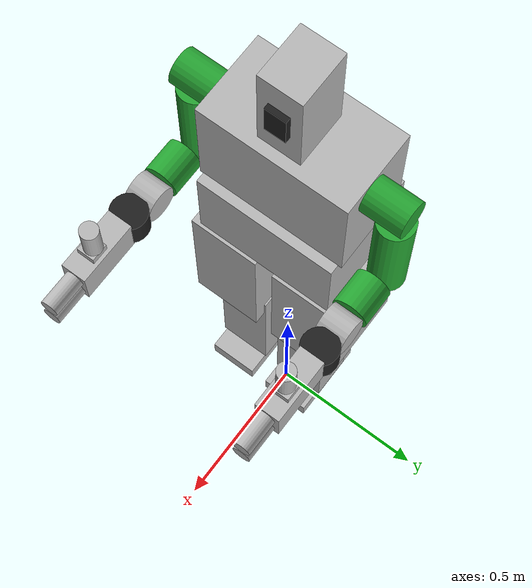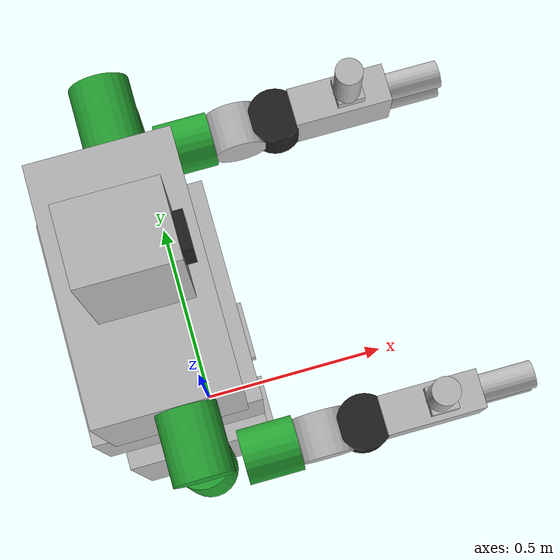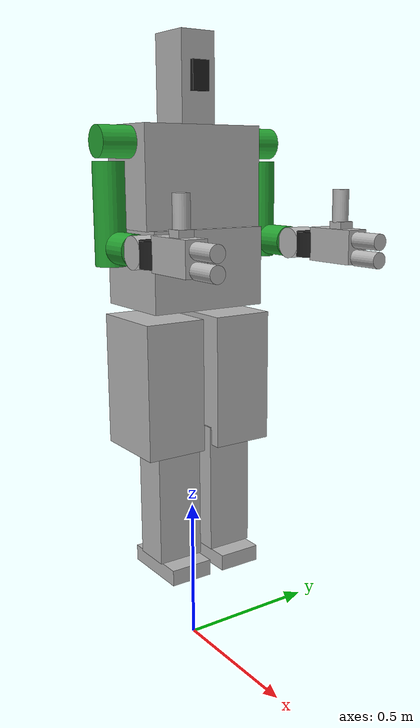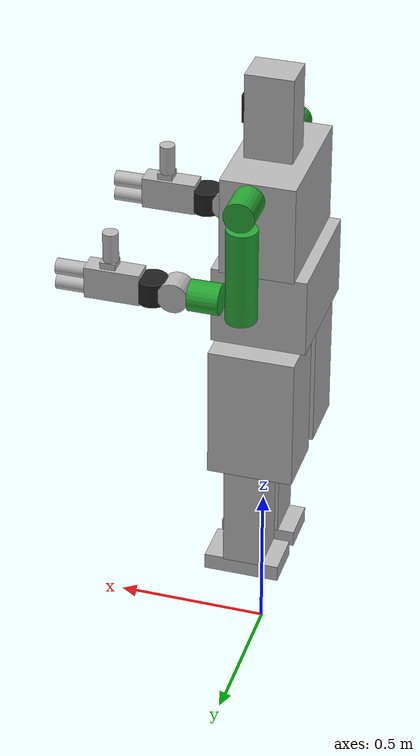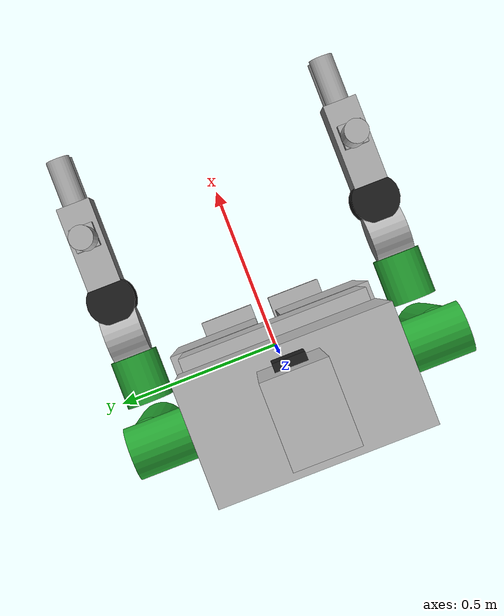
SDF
<sdf version="1.4">
 <model name="escher">
  <static>false</static>
  <pose>0 0 0.3 0 0 0</pose>
  <joint name="base" type="prismatic">
   <parent>world</parent>
   <child>torso</child>
   <axis><xyz>0 0 1</xyz><limit><upper>0</upper><lower>0</lower></limit></axis>
  </joint>
  <link name="torso">
   <pose>-0.03035 0 1.055 0 0 0</pose>
   <collision name="torso_collision"><geometry><box><size>0.307 0.41 0.26</size></box></geometry></collision>
   <visual name="torso_visual"><geometry><box><size>0.307 0.41 0.26</size></box></geometry></visual>
   <inertial>
    <pose>0.002803478 -8.1528e-05 -0.021648112 0 0 0</pose>
    <mass>12.682282372305</mass>
    <inertia>
     <ixx>0.189594996</ixx>
     <iyy>0.165226373</iyy>
     <izz>0.191129536</izz>
     <iyz>2.491e-05</iyz>
     <ixz>-0.00084363</ixz>
     <ixy>0.000243698</ixy>
    </inertia>
   </inertial>
   <sensor name="imu_sensor" type="imu">
    <pose>-0.176191689 0 -0.055105834 0 0 0</pose>
    <always_on>1</always_on>
    <visualize>1</visualize>
    <topic>imu_sensor</topic>
   </sensor>
   <sensor name="kvh_sensor" type="imu">
    <pose>-0.15365 0 -0.045645 0 0 1.5707963267949</pose>
    <always_on>1</always_on>
    <visualize>1</visualize>
    <update_rate>100.0</update_rate>
    <imu>
     <noise>
      <type>gaussian</type>
      <rate>
       <mean>0.0</mean>
       <stddev>2e-4</stddev>
       <bias_mean>0.0000075</bias_mean>
       <bias_stddev>0.0000008</bias_stddev>
      </rate>
      <accel>
       <mean>0.0</mean>
       <stddev>1.7e-2</stddev>
       <bias_mean>0.1</bias_mean>
       <bias_stddev>0.001</bias_stddev>
      </accel>
     </noise>
    </imu>
    <topic>kvh_sensor</topic>
   </sensor>
  </link>
  <link name="l_thigh">
   <pose>-0.0169442 0.132 0.67 0 0 0</pose>
   <collision name="l_thigh_collision">
    <pose>0 0 0 0 -0.15 0</pose>
    <geometry><box><size>0.28 0.21 0.45</size></box></geometry>
   </collision>
   <visual name="l_thigh_visual"><geometry><box><size>0.28 0.21 0.45</size></box></geometry></visual>
   <inertial>
    <pose>0.004050399 -0.010804671 0.022905819 0 0 0</pose>
    <mass>7.1174945701086</mass>
    <inertia>
     <ixx>0.079832533</ixx>
     <iyy>0.090497961</iyy>
     <izz>0.04397275</izz>
     <iyz>-0.003214845</iyz>
     <ixz>-0.014464827</ixz>
     <ixy>0.005608169</ixy>
    </inertia>
   </inertial>
  </link>
  <link name="r_thigh">
   <pose>-0.0169442 -0.132 0.67 0 0 0</pose>
   <collision name="r_thigh_collision">
    <pose>0 0 0 0 -0.18 0</pose>
    <geometry><box><size>0.28 0.21 0.45</size></box></geometry>
   </collision>
   <visual name="r_thigh_visual"><geometry><box><size>0.28 0.21 0.45</size></box></geometry></visual>
   <inertial>
    <pose>0.003909661 0.011175576 0.022998937 0 0 0</pose>
    <mass>7.1102215149036</mass>
    <inertia>
     <ixx>0.079523937</ixx>
     <iyy>0.090222577</iyy>
     <izz>0.044391657</izz>
     <iyz>0.003378144</iyz>
     <ixz>-0.014386485</ixz>
     <ixy>-0.005865006</ixy>
    </inertia>
   </inertial>
  </link>
  <link name="l_shin">
   <pose>0.0190724 0.1021182 0.2811108 0 0 0</pose>
   <collision name="l_shin_collision">
    <pose>0 0 0 0 0.28 0</pose>
    <geometry><box><size>0.13 0.16 0.4512008</size></box></geometry>
   </collision>
   <visual name="l_shin_visual"><geometry><box><size>0.13 0.16 0.4512008</size></box></geometry></visual>
   <inertial>
    <pose>0.020130801 -0.001731145 0.054724821 0 0 0</pose>
    <mass>4.8991768711307</mass>
    <inertia>
     <ixx>0.049926224</ixx>
     <iyy>0.051902624</iyy>
     <izz>0.017996958</izz>
     <iyz>-0.000412746</iyz>
     <ixz>0.008459786</ixz>
     <ixy>-6.1882e-05</ixy>
    </inertia>
   </inertial>
  </link>
  <link name="r_shin">
   <pose>0.0190724 -0.1021182 0.2811108 0 0 0</pose>
   <collision name="r_shin_collision">
    <pose>0 0 0 0 0.28 0</pose>
    <geometry><box><size>0.13 0.16 0.4512008</size></box></geometry>
   </collision>
   <visual name="r_shin_visual"><geometry><box><size>0.13 0.16 0.4512008</size></box></geometry></visual>
   <inertial>
    <pose>0.020130693 0.001836368 0.05472448 0 0 0</pose>
    <mass>4.899176790308</mass>
    <inertia>
     <ixx>0.049926754</ixx>
     <iyy>0.051902784</iyy>
     <izz>0.01799724</izz>
     <iyz>0.000377725</iyz>
     <ixz>0.008459765</ixz>
     <ixy>8.0717e-05</ixy>
    </inertia>
   </inertial>
  </link>
  <link name="l_foot">
   <pose>0.025 0.1 0.026724 0 0 0</pose>
   <collision name="l_foot_collision">
    <geometry><box><size>0.25 0.1485 0.05493235</size></box></geometry>
    <surface>
     <friction><ode><mu>0.9</mu><mu2>0.9</mu2><fdir1>1 0 0</fdir1></ode></friction>
     <contact><ode><max_vel>1.0</max_vel><min_depth>0.003</min_depth></ode></contact>
    </surface>
   </collision>
   <visual name="l_foot_visual"><geometry><box><size>0.25 0.1485 0.05493235</size></box></geometry></visual>
   <inertial>
    <pose>-0.028540497 0.00037102999999999 0.009582518 0 0 0</pose>
    <mass>1.8008403819182</mass>
    <inertia>
     <ixx>0.003629189</ixx>
     <iyy>0.007181627</iyy>
     <izz>0.007515445</izz>
     <iyz>2.3132e-05</iyz>
     <ixz>-0.001366256</ixz>
     <ixy>1.3079e-05</ixy>
    </inertia>
   </inertial>
   <sensor name="l_foot_contact_sensor" type="contact">
    <always_on>1</always_on>
    <contact><collision>l_foot_collision</collision></contact>
   </sensor>
  </link>
  <link name="r_foot">
   <pose>0.025 -0.1 0.0266724 0 0 0</pose>
   <collision name="r_foot_collision">
    <geometry><box><size>0.25 0.1485 0.05493235</size></box></geometry>
    <surface>
     <friction><ode><mu>0.9</mu><mu2>0.9</mu2><fdir1>1 0 0</fdir1></ode></friction>
     <contact><ode><max_vel>1.0</max_vel><min_depth>0.003</min_depth></ode></contact>
    </surface>
   </collision>
   <visual name="r_foot_visual"><geometry><box><size>0.25 0.1485 0.05493235</size></box></geometry></visual>
   <inertial>
    <pose>-0.028252817 -0.00035825099999999 0.009635153 0 0 0</pose>
    <mass>1.8047217702742</mass>
    <inertia>
     <ixx>0.003638673</ixx>
     <iyy>0.007191304</iyy>
     <izz>0.007526564</izz>
     <iyz>-2.3098e-05</iyz>
     <ixz>-0.001360529</ixz>
     <ixy>8.912e-06</ixy>
    </inertia>
   </inertial>
   <sensor name="r_foot_contact_sensor" type="contact">
    <always_on>1</always_on>
    <contact><collision>r_foot_collision</collision></contact>
   </sensor>
  </link>
  <link name="l_hip_yaw_trunnion">
   <pose>0 0.1 0.9 0 0 0</pose>
   <inertial>
    <mass>0.051809443030815</mass>
    <inertia>
     <ixx>0.0085833333333333</ixx>
     <iyy>0.0085833333333333</iyy>
     <izz>0.00075</izz>
     <ixy>0</ixy>
     <ixz>0</ixz>
     <iyz>0</iyz>
    </inertia>
   </inertial>
  </link>
  <link name="r_hip_yaw_trunnion">
   <pose>0 -0.1 0.9 0 0 0</pose>
   <inertial>
    <mass>0.051809443030815</mass>
    <inertia>
     <ixx>0.0085833333333333</ixx>
     <iyy>0.0085833333333333</iyy>
     <izz>0.00075</izz>
     <ixy>0</ixy>
     <ixz>0</ixz>
     <iyz>0</iyz>
    </inertia>
   </inertial>
  </link>
  <link name="l_hip_pitch_trunnion">
   <pose>0 0.1 0.9 0 0 0</pose>
   <inertial>
    <pose>0 0 0 1.5707963267949 0 0</pose>
    <mass>0.051809443030815</mass>
    <inertia>
     <ixx>0.0085833333333333</ixx>
     <iyy>0.0085833333333333</iyy>
     <izz>0.00075</izz>
     <ixy>0</ixy>
     <ixz>0</ixz>
     <iyz>0</iyz>
    </inertia>
   </inertial>
  </link>
  <link name="r_hip_pitch_trunnion">
   <pose>0 -0.1 0.9 0 0 0</pose>
   <inertial>
    <pose>0 0 0 1.5707963267949 0 0</pose>
    <mass>0.051809443030815</mass>
    <inertia>
     <ixx>0.0085833333333333</ixx>
     <iyy>0.0085833333333333</iyy>
     <izz>0.00075</izz>
     <ixy>0</ixy>
     <ixz>0</ixz>
     <iyz>0</iyz>
    </inertia>
   </inertial>
  </link>
  <link name="l_ankle_pitch_trunnion">
   <pose>0 0.1 0.08 0 0 0</pose>
   <inertial>
    <pose>0 0 0 1.5707963267949 0 0</pose>
    <mass>0.051809443030815</mass>
    <inertia>
     <ixx>0.0085833333333333</ixx>
     <iyy>0.0085833333333333</iyy>
     <izz>0.00075</izz>
     <ixy>0</ixy>
     <ixz>0</ixz>
     <iyz>0</iyz>
    </inertia>
   </inertial>
  </link>
  <link name="r_ankle_pitch_trunnion">
   <pose>0 -0.1 0.08 0 0 0</pose>
   <inertial>
    <pose>0 0 0 1.5707963267949 0 0</pose>
    <mass>0.051809443030815</mass>
    <inertia>
     <ixx>0.0085833333333333</ixx>
     <iyy>0.0085833333333333</iyy>
     <izz>0.00075</izz>
     <ixy>0</ixy>
     <ixz>0</ixz>
     <iyz>0</iyz>
    </inertia>
   </inertial>
  </link>
  <joint name="l_hip_yaw" type="revolute">
   <parent>torso</parent>
   <child>l_hip_yaw_trunnion</child>
   <axis>
    <xyz>0 0 1</xyz>
    <limit>
     <lower>-0.34906585039887</lower>
     <upper>0.78539816339745</upper>
     <effort>150</effort>
     <velocity>12</velocity>
    </limit>
    <dynamics><damping>1.0</damping><friction>0</friction></dynamics>
   </axis>
   <physics><ode><cfm_damping>1</cfm_damping></ode></physics>
  </joint>
  <joint name="r_hip_yaw" type="revolute">
   <parent>torso</parent>
   <child>r_hip_yaw_trunnion</child>
   <axis>
    <xyz>0 0 1</xyz>
    <limit>
     <lower>-0.78539816339745</lower>
     <upper>0.34906585039887</upper>
     <effort>150</effort>
     <velocity>12</velocity>
    </limit>
    <dynamics><damping>1.0</damping><friction>0</friction></dynamics>
   </axis>
   <physics><ode><cfm_damping>1</cfm_damping></ode></physics>
  </joint>
  <joint name="l_hip_roll" type="revolute">
   <parent>l_hip_yaw_trunnion</parent>
   <child>l_hip_pitch_trunnion</child>
   <axis>
    <xyz>1 0 0</xyz>
    <limit>
     <lower>-0.5235987755983</lower>
     <upper>0.78539816339745</upper>
     <effort>150</effort>
     <velocity>12</velocity>
    </limit>
    <dynamics><damping>1.0</damping><friction>0</friction></dynamics>
   </axis>
   <physics><ode><cfm_damping>1</cfm_damping></ode></physics>
  </joint>
  <joint name="r_hip_roll" type="revolute">
   <parent>r_hip_yaw_trunnion</parent>
   <child>r_hip_pitch_trunnion</child>
   <axis>
    <xyz>1 0 0</xyz>
    <limit>
     <lower>-0.78539816339745</lower>
     <upper>0.5235987755983</upper>
     <effort>150</effort>
     <velocity>12</velocity>
    </limit>
    <dynamics><damping>1.0</damping><friction>0</friction></dynamics>
   </axis>
   <physics><ode><cfm_damping>1</cfm_damping></ode></physics>
  </joint>
  <joint name="l_hip_pitch" type="revolute">
   <pose>0.0169442 -0.032 0.23 0 0 0</pose>
   <parent>l_hip_pitch_trunnion</parent>
   <child>l_thigh</child>
   <axis>
    <xyz>0 1 0</xyz>
    <limit>
     <lower>-2.0943951023932</lower>
     <upper>0.5235987755983</upper>
     <effort>200</effort>
     <velocity>12</velocity>
    </limit>
    <dynamics><damping>1.0</damping><friction>0</friction></dynamics>
   </axis>
   <physics><ode><cfm_damping>1</cfm_damping></ode></physics>
  </joint>
  <joint name="r_hip_pitch" type="revolute">
   <pose>0.0169442 0.032 0.23 0 0 0</pose>
   <parent>r_hip_pitch_trunnion</parent>
   <child>r_thigh</child>
   <axis>
    <xyz>0 1 0</xyz>
    <limit>
     <lower>-2.0943951023932</lower>
     <upper>0.5235987755983</upper>
     <effort>200</effort>
     <velocity>12</velocity>
    </limit>
    <dynamics><damping>1.0</damping><friction>0</friction></dynamics>
   </axis>
   <physics><ode><cfm_damping>1</cfm_damping></ode></physics>
  </joint>
  <joint name="l_knee_pitch" type="revolute">
   <pose>-0.0190724 -0.0021182 0.2088892 0 0 0</pose>
   <parent>l_thigh</parent>
   <child>l_shin</child>
   <axis>
    <xyz>0 1 0</xyz>
    <limit><lower>0</lower><upper>2.3561944901923</upper><effort>300</effort><velocity>12</velocity></limit>
    <dynamics><damping>1.0</damping><friction>0</friction></dynamics>
   </axis>
   <physics><ode><cfm_damping>1</cfm_damping></ode></physics>
  </joint>
  <joint name="r_knee_pitch" type="revolute">
   <pose>-0.0190724 0.0021182 0.2088892 0 0 0</pose>
   <parent>r_thigh</parent>
   <child>r_shin</child>
   <axis>
    <xyz>0 1 0</xyz>
    <limit><lower>0</lower><upper>2.3561944901923</upper><effort>300</effort><velocity>12</velocity></limit>
    <dynamics><damping>1.0</damping><friction>0</friction></dynamics>
   </axis>
   <physics><ode><cfm_damping>1</cfm_damping></ode></physics>
  </joint>
  <joint name="l_ankle_pitch" type="revolute">
   <parent>l_shin</parent>
   <child>l_ankle_pitch_trunnion</child>
   <axis>
    <xyz>0 1 0</xyz>
    <limit>
     <lower>-0.95993108859688</lower>
     <upper>0.61086523819802</upper>
     <effort>150</effort>
     <velocity>12</velocity>
    </limit>
    <dynamics><damping>1.0</damping><friction>0</friction></dynamics>
   </axis>
   <physics><ode><cfm_damping>1</cfm_damping></ode></physics>
  </joint>
  <joint name="r_ankle_pitch" type="revolute">
   <parent>r_shin</parent>
   <child>r_ankle_pitch_trunnion</child>
   <axis>
    <xyz>0 1 0</xyz>
    <limit>
     <lower>-0.95993108859688</lower>
     <upper>0.61086523819802</upper>
     <effort>150</effort>
     <velocity>12</velocity>
    </limit>
    <dynamics><damping>1.0</damping><friction>0</friction></dynamics>
   </axis>
   <physics><ode><cfm_damping>1</cfm_damping></ode></physics>
  </joint>
  <joint name="l_ankle_roll" type="revolute">
   <pose>-0.025 0 0.053276 0 0 0</pose>
   <parent>l_ankle_pitch_trunnion</parent>
   <child>l_foot</child>
   <axis>
    <xyz>1 0 0</xyz>
    <limit>
     <lower>-0.5235987755983</lower>
     <upper>0.5235987755983</upper>
     <effort>150</effort>
     <velocity>12</velocity>
    </limit>
    <dynamics><damping>1.0</damping><friction>0</friction></dynamics>
   </axis>
   <physics><provide_feedback>1</provide_feedback><ode><cfm_damping>1</cfm_damping></ode></physics>
  </joint>
  <joint name="r_ankle_roll" type="revolute">
   <pose>-0.025 0 0.0533276 0 0 0</pose>
   <parent>r_ankle_pitch_trunnion</parent>
   <child>r_foot</child>
   <axis>
    <xyz>1 0 0</xyz>
    <limit>
     <lower>-0.5235987755983</lower>
     <upper>0.5235987755983</upper>
     <effort>150</effort>
     <velocity>12</velocity>
    </limit>
    <dynamics><damping>1.0</damping><friction>0</friction></dynamics>
   </axis>
   <physics><provide_feedback>1</provide_feedback><ode><cfm_damping>1</cfm_damping></ode></physics>
  </joint>
  <joint name="waist_yaw" type="revolute">
   <parent>torso</parent>
   <child>chest</child>
   <axis>
    <xyz>0 0 1</xyz>
    <limit>
     <lower>-0.78539816339745</lower>
     <upper>0.78539816339745</upper>
     <effort>150</effort>
     <velocity>12</velocity>
    </limit>
    <dynamics><damping>1.0</damping><friction>0</friction></dynamics>
   </axis>
   <physics><ode><cfm_damping>1</cfm_damping></ode></physics>
  </joint>
  <link name="chest">
   <pose>-0.02515 0 1.3455 0 0 0</pose>
   <collision name="chest_collision"><geometry><box><size>0.24 0.43 0.325</size></box></geometry></collision>
   <collision name="chest_collision_2">
    <pose>0.02515 0.139 0.3125 0 0 0</pose>
    <geometry><box><size>0.1 0.08 0.33</size></box></geometry>
   </collision>
   <collision name="chest_collision_3">
    <pose>0.02515 -0.139 0.3125 0 0 0</pose>
    <geometry><box><size>0.1 0.08 0.33</size></box></geometry>
   </collision>
   <collision name="chest_collision_4">
    <pose>0.02515 0 0.4795 0 0 0</pose>
    <geometry><box><size>0.05 0.22 0.045</size></box></geometry>
   </collision>
   <visual name="chest_visual"><geometry><box><size>0.24 0.43 0.325</size></box></geometry></visual>
   <inertial>
    <pose>0.000498614 -0.000572102 0.0010705200000001 0 0 0</pose>
    <mass>15.99243891983</mass>
    <inertia>
     <ixx>0.320061097</ixx>
     <iyy>0.258881187</iyy>
     <izz>0.19263458</izz>
     <iyz>0.005595512</iyz>
     <ixz>-0.006857708</ixz>
     <ixy>-0.001679142</ixy>
    </inertia>
   </inertial>
   <sensor name="camera.ptgrey" type="camera">
    <pose>0.1323009 -0.0675 0.2217387 0 0.611 0</pose>
    <camera>
     <horizontal_fov>1.75</horizontal_fov>
     <image><width>640</width><height>480</height><format>R8G8B8</format></image>
     <clip><near>0.5</near><far>30</far></clip>
     <noise><type>gaussian</type><mean>0.0</mean><stddev>0.007</stddev></noise>
    </camera>
    <plugin name="camera_controller" filename="libgazebo_ros_camera.so">
     <alwaysOn>true</alwaysOn>
     <updateRate>30.0</updateRate>
     <cameraName>chest/camera</cameraName>
     <imageTopicName>image_raw</imageTopicName>
     <cameraInfoTopicName>camera_info</cameraInfoTopicName>
     <frameName>camera.ptgrey</frameName>
     <hackBaseline>0.0</hackBaseline>
     <distortionK1>-0.293600</distortionK1>
     <distortionK2>0.212124</distortionK2>
     <distortionK3>-0.138326</distortionK3>
     <distortionT1>0.000764</distortionT1>
     <distortionT2>-0.000452</distortionT2>
    </plugin>
   </sensor>
  </link>
  <joint name="head_yaw" type="revolute">
   <pose>0 -0.003 -0.021525 0 0 0</pose>
   <parent>chest</parent>
   <child>neck</child>
   <axis>
    <xyz>0 0 1</xyz>
    <limit>
     <lower>-1.5707963267949</lower>
     <upper>1.5707963267949</upper>
     <effort>150</effort>
     <velocity>12</velocity>
    </limit>
    <dynamics><damping>1.0</damping><friction>0</friction></dynamics>
   </axis>
   <physics><ode><cfm_damping>1</cfm_damping></ode></physics>
  </joint>
  <link name="neck">
   <pose>0 0.003 1.559525 0 0 0</pose>
   <collision name="neck_collision"><geometry><box><size>0.0541 0.096 0.05405</size></box></geometry></collision>
   <visual name="neck_visual"><geometry><box><size>0.0541 0.096 0.05405</size></box></geometry></visual>
   <inertial>
    <pose>-1e-08 -0.002711219 0.004186325 0 0 0</pose>
    <mass>0.44370991981621</mass>
    <inertia>
     <ixx>0.000347468</ixx>
     <iyy>0.000151286</iyy>
     <izz>0.000333572</izz>
     <iyz>-8.157e-06</iyz>
     <ixz>-0</ixz>
     <ixy>0</ixy>
    </inertia>
   </inertial>
  </link>
  <joint name="head_pitch" type="revolute">
   <pose>0.0142568 0 -0.07445 0 0 0</pose>
   <parent>neck</parent>
   <child>head</child>
   <axis>
    <xyz>0 1 0</xyz>
    <limit>
     <lower>-0.5235987755983</lower>
     <upper>1.0471975511966</upper>
     <effort>150</effort>
     <velocity>12</velocity>
    </limit>
    <dynamics><damping>1.0</damping><friction>0</friction></dynamics>
   </axis>
   <physics><ode><cfm_damping>1</cfm_damping></ode></physics>
  </joint>
  <link name="head">
   <pose>-0.0142568 0 1.64105 0 0 0</pose>
   <collision name="head_collision">
    <geometry><box><size>0.155386 0.122 0.2991</size></box></geometry>
   </collision>
   <visual name="head_visual"><geometry><box><size>0.155386 0.122 0.2991</size></box></geometry></visual>
   <inertial>
    <pose>-0.004786718 1.1808e-05 0.064075812 0 0 0</pose>
    <mass>1.788406731087</mass>
    <inertia>
     <ixx>0.009989911</ixx>
     <iyy>0.010295295</iyy>
     <izz>0.003904584</izz>
     <iyz>-8.541e-06</iyz>
     <ixz>0.002192988</ixz>
     <ixy>3.49e-06</ixy>
    </inertia>
   </inertial>
  </link>
  <joint name="left_camera_frame_joint" type="revolute">
   <parent>head</parent>
   <child>left_camera_frame</child>
   <axis><xyz>0 1 0</xyz><limit><lower>0.0</lower><upper>0.0</upper></limit></axis>
  </joint>
  <link name="left_camera_frame">
   <pose>0.051565 0.035 1.75287 0 0 0</pose>
   <sensor type="multicamera" name="camera_multisense">
    <update_rate>10.0</update_rate>
    <camera name="left">
     <horizontal_fov>1.3962634</horizontal_fov>
     <image><width>800</width><height>800</height><format>R8G8B8</format></image>
     <clip><near>0.02</near><far>300</far></clip>
     <noise><type>gaussian</type><mean>0.0</mean><stddev>0.007</stddev></noise>
    </camera>
    <camera name="right">
     <pose>0 -0.07 0 0 0 0</pose>
     <horizontal_fov>1.3962634</horizontal_fov>
     <image><width>800</width><height>800</height><format>R8G8B8</format></image>
     <clip><near>0.02</near><far>300</far></clip>
     <noise><type>gaussian</type><mean>0.0</mean><stddev>0.007</stddev></noise>
    </camera>
    <plugin name="stereo_camera_controller" filename="libgazebo_ros_multicamera.so">
     <alwaysOn>true</alwaysOn>
     <updateRate>0.0</updateRate>
     <cameraName>multisense</cameraName>
     <imageTopicName>image_raw</imageTopicName>
     <cameraInfoTopicName>camera_info</cameraInfoTopicName>
     <frameName>/multisense/left_camera_optical_frame</frameName>
     <hackBaseline>0.07</hackBaseline>
     <distortionK1>0.0</distortionK1>
     <distortionK2>0.0</distortionK2>
     <distortionK3>0.0</distortionK3>
     <distortionT1>0.0</distortionT1>
     <distortionT2>0.0</distortionT2>
    </plugin>
   </sensor>
   <inertial>
    <mass>0.010361888606163</mass>
    <inertia><ixx>0.0005</ixx><iyy>0.0005</iyy><izz>0.0005</izz><iyz>0</iyz><ixz>0</ixz><ixy>0</ixy></inertia>
   </inertial>
  </link>
  <joint name="head_lidar_roll" type="revolute">
   <pose>-0.0098 0 0 0 0 0</pose>
   <parent>head</parent>
   <child>head_lidar</child>
   <axis>
    <xyz>1 0 0</xyz>
    <limit><effort>150</effort><velocity>12</velocity></limit>
    <dynamics><damping>1.0</damping><friction>0</friction></dynamics>
   </axis>
   <physics><ode><cfm_damping>1</cfm_damping></ode></physics>
  </joint>
  <link name="head_lidar">
   <pose>0.0098 0 1.6556 0 0 0</pose>
   <collision name="head_lidar_collision">
    <geometry><box><size>0.1395 0.06 0.093</size></box></geometry>
   </collision>
   <visual name="head_lidar_visual">
    <geometry><box><size>0.1395 0.06 0.093</size></box></geometry>
    <material>
     <script><uri>file://media/materials/scripts/gazebo.material</uri><name>Gazebo/FlatBlack</name></script>
    </material>
   </visual>
   <inertial>
    <pose>0.015563303 -2.21e-06 -0.007631224 0 0 0</pose>
    <mass>0.44979898625387</mass>
    <inertia>
     <ixx>0.000368817</ixx>
     <iyy>0.000869352</iyy>
     <izz>0.000701866</izz>
     <iyz>-2.1e-08</iyz>
     <ixz>-8.417e-06</ixz>
     <ixy>5.5e-08</ixy>
    </inertia>
   </inertial>
   <sensor name="lidar.head_hokuyo" type="ray">
    <always_on>1</always_on>
    <update_rate>40</update_rate>
    <pose>0.0397 0 0.0115 0 0 0</pose>
    <ray>
     <scan>
      <horizontal>
       <samples>1081</samples>
       <resolution>1</resolution>
       <min_angle>-2.35619449</min_angle>
       <max_angle>2.35619449</max_angle>
      </horizontal>
     </scan>
     <range><min>.1</min><max>30</max><resolution>.05</resolution></range>
     <noise><type>gaussian</type><mean>0.0</mean><stddev>0.01</stddev></noise>
    </ray>
    <plugin name="gazebo_ros_head_hokuyo" filename="libgazebo_ros_laser.so">
     <topicName>/laser/scan/</topicName>
     <frameName>head_lidar_receiver</frameName>
    </plugin>
   </sensor>
  </link>
  <joint name="l_shoulder_pitch" type="revolute">
   <parent>chest</parent>
   <child>l_shoulder</child>
   <axis>
    <xyz>0 1 0</xyz>
    <limit>
     <lower>-3.1415926535898</lower>
     <upper>1.0471975511966</upper>
     <effort>60</effort>
     <velocity>2.0944</velocity>
    </limit>
    <dynamics><damping>0.7</damping><friction>0</friction></dynamics>
   </axis>
   <physics><ode><cfm_damping>1</cfm_damping></ode></physics>
  </joint>
  <joint name="r_shoulder_pitch" type="revolute">
   <parent>chest</parent>
   <child>r_shoulder</child>
   <axis>
    <xyz>0 1 0</xyz>
    <limit>
     <lower>-3.1415926535898</lower>
     <upper>1.0471975511966</upper>
     <effort>60</effort>
     <velocity>2.0944</velocity>
    </limit>
    <dynamics><damping>0.7</damping><friction>0</friction></dynamics>
   </axis>
   <physics><ode><cfm_damping>1</cfm_damping></ode></physics>
  </joint>
  <link name="l_shoulder">
   <pose>0 0.1275 1.4534 0 0 0</pose>
   <collision name="l_shoulder_collision">
    <pose>0 0.102 3.7499999999913e-05 1.5707963267949 0 0</pose>
    <geometry><cylinder><radius>0.05</radius><length>0.2</length></cylinder></geometry>
   </collision>
   <visual name="l_shoulder_visual">
    <pose>0 0.102 3.7499999999913e-05 1.5707963267949 0 0</pose>
    <geometry><cylinder><radius>0.05</radius><length>0.2</length></cylinder></geometry>
    <material><script><uri>__default__</uri><name>Gazebo/Green</name></script></material>
   </visual>
   <inertial>
    <pose>0.000688524 0.082497455 -0.00011075299999996 0 0 0</pose>
    <mass>1.3930505540896</mass>
    <inertia>
     <ixx>0.002733115</ixx>
     <iyy>0.001266362</iyy>
     <izz>0.002795471</izz>
     <iyz>-1.541e-06</iyz>
     <ixz>1.54e-07</ixz>
     <ixy>7.3154e-05</ixy>
    </inertia>
   </inertial>
  </link>
  <link name="r_shoulder">
   <pose>0 -0.1275 1.4534 0 0 0</pose>
   <collision name="r_shoulder_collision">
    <pose>0 -0.102 3.7499999999913e-05 1.5707963267949 0 0</pose>
    <geometry><cylinder><radius>0.05</radius><length>0.2</length></cylinder></geometry>
   </collision>
   <visual name="r_shoulder_visual">
    <pose>0 -0.102 3.7499999999913e-05 1.5707963267949 0 0</pose>
    <geometry><cylinder><radius>0.05</radius><length>0.2</length></cylinder></geometry>
    <material><script><uri>__default__</uri><name>Gazebo/Green</name></script></material>
   </visual>
   <inertial>
    <pose>0.000693283 -0.082497455 -0.00011074799999999 0 0 0</pose>
    <mass>1.3930505540896</mass>
    <inertia>
     <ixx>0.002733115</ixx>
     <iyy>0.001266353</iyy>
     <izz>0.002795463</izz>
     <iyz>1.541e-06</iyz>
     <ixz>1.21e-07</ixz>
     <ixy>-7.2667e-05</ixy>
    </inertia>
   </inertial>
  </link>
  <joint name="l_shoulder_roll" type="revolute">
   <parent>l_shoulder</parent>
   <child>l_shoulder_roll_link</child>
   <axis>
    <xyz>1 0 0</xyz>
    <limit>
     <lower>-0.5235987755983</lower>
     <upper>3.1415926535898</upper>
     <effort>60</effort>
     <velocity>2.0944</velocity>
    </limit>
    <dynamics><damping>0.7</damping><friction>0</friction></dynamics>
   </axis>
   <physics><ode><cfm_damping>1</cfm_damping></ode></physics>
  </joint>
  <joint name="r_shoulder_roll" type="revolute">
   <parent>r_shoulder</parent>
   <child>r_shoulder_roll_link</child>
   <axis>
    <xyz>1 0 0</xyz>
    <limit>
     <lower>-3.1415926535898</lower>
     <upper>0.5235987755983</upper>
     <effort>60</effort>
     <velocity>2.0944</velocity>
    </limit>
    <dynamics><damping>0.7</damping><friction>0</friction></dynamics>
   </axis>
   <physics><ode><cfm_damping>1</cfm_damping></ode></physics>
  </joint>
  <link name="l_shoulder_roll_link">
   <pose>0 0.2905 1.4534 0 0 0</pose>
   <visual name="l_shoulder_roll_link_visual">
    <geometry><cylinder><radius>0</radius><length>0</length></cylinder></geometry>
    <material><script><uri>__default__</uri><name>Gazebo/Grey</name></script></material>
   </visual>
   <inertial>
    <pose>-0.000157497 -6.628799999997e-05 -0.015018902 0 0 0</pose>
    <mass>0.73485524849022</mass>
    <inertia>
     <ixx>0.000940092</ixx>
     <iyy>0.000866608</iyy>
     <izz>0.000365724</izz>
     <iyz>2.817e-06</iyz>
     <ixz>-1.865e-06</ixz>
     <ixy>-7e-09</ixy>
    </inertia>
   </inertial>
  </link>
  <link name="r_shoulder_roll_link">
   <pose>0 -0.2905 1.4534 0 0 0</pose>
   <visual name="r_shoulder_roll_link_visual">
    <geometry><cylinder><radius>0</radius><length>0</length></cylinder></geometry>
    <material><script><uri>__default__</uri><name>Gazebo/Grey</name></script></material>
   </visual>
   <inertial>
    <pose>0.000157497 6.628799999997e-05 -0.015018902 0 0 0</pose>
    <mass>0.73485524849022</mass>
    <inertia>
     <ixx>0.000940092</ixx>
     <iyy>0.000866608</iyy>
     <izz>0.000365724</izz>
     <iyz>-2.817e-06</iyz>
     <ixz>1.865e-06</ixz>
     <ixy>-7e-09</ixy>
    </inertia>
   </inertial>
  </link>
  <joint name="l_shoulder_yaw" type="revolute">
   <parent>l_shoulder_roll_link</parent>
   <child>l_arm</child>
   <axis>
    <xyz>0 0 1</xyz>
    <limit>
     <lower>-2.0943951023932</lower>
     <upper>2.0943951023932</upper>
     <effort>60</effort>
     <velocity>2.0944</velocity>
    </limit>
    <dynamics><damping>0.7</damping><friction>0</friction></dynamics>
   </axis>
   <physics><ode><cfm_damping>1</cfm_damping></ode></physics>
  </joint>
  <joint name="r_shoulder_yaw" type="revolute">
   <parent>r_shoulder_roll_link</parent>
   <child>r_arm</child>
   <axis>
    <xyz>0 0 1</xyz>
    <limit>
     <lower>-2.0943951023932</lower>
     <upper>2.0943951023932</upper>
     <effort>60</effort>
     <velocity>2.0944</velocity>
    </limit>
    <dynamics><damping>0.7</damping><friction>0</friction></dynamics>
   </axis>
   <physics><ode><cfm_damping>1</cfm_damping></ode></physics>
  </joint>
  <link name="l_arm">
   <pose>0 0.2905 1.4534 0 0 0</pose>
   <collision name="l_arm_collision">
    <pose>0 0 -0.21829375 0 0 0</pose>
    <geometry><cylinder><radius>0.05</radius><length>0.32</length></cylinder></geometry>
   </collision>
   <visual name="l_arm_visual">
    <pose>0 0 -0.21829375 0 0 0</pose>
    <geometry><cylinder><radius>0.05</radius><length>0.32</length></cylinder></geometry>
    <material><script><uri>__default__</uri><name>Gazebo/Green</name></script></material>
   </visual>
   <inertial>
    <pose>4e-09 0.00094170500000001 -0.209115474 0 0 0</pose>
    <mass>1.3385791377311</mass>
    <inertia>
     <ixx>0.007190942</ixx>
     <iyy>0.007116565</iyy>
     <izz>0.000965322</izz>
     <iyz>-0.000130703</iyz>
     <ixz>-0</ixz>
     <ixy>-1e-09</ixy>
    </inertia>
   </inertial>
  </link>
  <link name="r_arm">
   <pose>0 -0.2905 1.4534 0 0 0</pose>
   <collision name="r_arm_collision">
    <pose>0 0 -0.21829375 0 0 0</pose>
    <geometry><cylinder><radius>0.05</radius><length>0.32</length></cylinder></geometry>
   </collision>
   <visual name="r_arm_visual">
    <pose>0 0 -0.21829375 0 0 0</pose>
    <geometry><cylinder><radius>0.05</radius><length>0.32</length></cylinder></geometry>
    <material><script><uri>__default__</uri><name>Gazebo/Green</name></script></material>
   </visual>
   <inertial>
    <pose>-4e-09 -0.00094170500000001 -0.209115474 0 0 0</pose>
    <mass>1.3385791377311</mass>
    <inertia>
     <ixx>0.007190942</ixx>
     <iyy>0.007116565</iyy>
     <izz>0.000965322</izz>
     <iyz>0.000130703</iyz>
     <ixz>0</ixz>
     <ixy>-1e-09</ixy>
    </inertia>
   </inertial>
  </link>
  <joint name="l_elbow_pitch" type="revolute">
   <parent>l_arm</parent>
   <child>l_elbow_link</child>
   <axis>
    <xyz>0 1 0</xyz>
    <limit>
     <lower>-0.5235987755983</lower>
     <upper>3.6651914291881</upper>
     <effort>60</effort>
     <velocity>2.0944</velocity>
    </limit>
    <dynamics><damping>0.7</damping><friction>0</friction></dynamics>
   </axis>
   <physics><ode><cfm_damping>1</cfm_damping></ode></physics>
  </joint>
  <joint name="r_elbow_pitch" type="revolute">
   <parent>r_arm</parent>
   <child>r_elbow_link</child>
   <axis>
    <xyz>0 1 0</xyz>
    <limit>
     <lower>-0.5235987755983</lower>
     <upper>3.6651914291881</upper>
     <effort>60</effort>
     <velocity>2.0944</velocity>
    </limit>
    <dynamics><damping>0.7</damping><friction>0</friction></dynamics>
   </axis>
   <physics><ode><cfm_damping>1</cfm_damping></ode></physics>
  </joint>
  <link name="l_elbow_link">
   <pose>0 0.2905 1.1348 0 0 0</pose>
   <visual name="l_elbow_link_visual">
    <geometry><cylinder><radius>0</radius><length>0</length></cylinder></geometry>
    <material>
     <script><uri>file://media/materials/scripts/gazebo.material</uri><name>Gazebo/FlatBlack</name></script>
    </material>
   </visual>
   <inertial>
    <pose>0.014760471 0.00015822900000001 -3.8344000000023e-05 0 0 0</pose>
    <mass>0.95730452073646</mass>
    <inertia>
     <ixx>0.000477001</ixx>
     <iyy>0.001214959</iyy>
     <izz>0.001118907</izz>
     <iyz>1.1e-08</iyz>
     <ixz>-4.205e-06</ixz>
     <ixy>-2.405e-06</ixy>
    </inertia>
   </inertial>
  </link>
  <link name="r_elbow_link">
   <pose>0 -0.2905 1.1348 0 0 0</pose>
   <visual name="r_elbow_link_visual">
    <geometry><cylinder><radius>0</radius><length>0</length></cylinder></geometry>
    <material>
     <script><uri>file://media/materials/scripts/gazebo.material</uri><name>Gazebo/FlatBlack</name></script>
    </material>
   </visual>
   <inertial>
    <pose>0.014760471 0.00015822899999995 -3.8344000000023e-05 0 0 0</pose>
    <mass>0.95730452073646</mass>
    <inertia>
     <ixx>0.000477001</ixx>
     <iyy>0.001214959</iyy>
     <izz>0.001118907</izz>
     <iyz>1.1e-08</iyz>
     <ixz>-4.205e-06</ixz>
     <ixy>-2.405e-06</ixy>
    </inertia>
   </inertial>
  </link>
  <joint name="l_elbow_roll" type="revolute">
   <parent>l_elbow_link</parent>
   <child>l_forearm</child>
   <axis>
    <xyz>1 0 0</xyz>
    <limit>
     <lower>-2.0943951023932</lower>
     <upper>2.0943951023932</upper>
     <effort>60</effort>
     <velocity>2.0944</velocity>
    </limit>
    <dynamics><damping>0.7</damping><friction>0</friction></dynamics>
   </axis>
   <physics><ode><cfm_damping>1</cfm_damping></ode></physics>
  </joint>
  <joint name="r_elbow_roll" type="revolute">
   <parent>r_elbow_link</parent>
   <child>r_forearm</child>
   <axis>
    <xyz>1 0 0</xyz>
    <limit>
     <lower>-2.0943951023932</lower>
     <upper>2.0943951023932</upper>
     <effort>60</effort>
     <velocity>2.0944</velocity>
    </limit>
    <dynamics><damping>0.7</damping><friction>0</friction></dynamics>
   </axis>
   <physics><ode><cfm_damping>1</cfm_damping></ode></physics>
  </joint>
  <link name="l_forearm">
   <pose>0 0.2905 1.1348 0 0 0</pose>
   <collision name="l_forearm_collision">
    <pose>0.1126 0 3.7499999999913e-05 0 1.5707963267949 0</pose>
    <geometry><cylinder><radius>0.05</radius><length>0.1</length></cylinder></geometry>
   </collision>
   <visual name="l_forearm_visual">
    <pose>0.1126 0 3.7499999999913e-05 0 1.5707963267949 0</pose>
    <geometry><cylinder><radius>0.05</radius><length>0.1</length></cylinder></geometry>
    <material><script><uri>__default__</uri><name>Gazebo/Green</name></script></material>
   </visual>
   <inertial>
    <pose>0.145307207 -0.00075732699999997 5.1295999999867e-05 0 0 0</pose>
    <mass>1.0243157641263</mass>
    <inertia>
     <ixx>0.000942831</ixx>
     <iyy>0.001534454</iyy>
     <izz>0.001587995</izz>
     <iyz>4.3e-07</iyz>
     <ixz>2.35e-07</ixz>
     <ixy>-3.4005e-05</ixy>
    </inertia>
   </inertial>
  </link>
  <link name="r_forearm">
   <pose>0 -0.2905 1.1348 0 0 0</pose>
   <collision name="r_forearm_collision">
    <pose>0.1126 0 3.7499999999913e-05 0 1.5707963267949 0</pose>
    <geometry><cylinder><radius>0.05</radius><length>0.1</length></cylinder></geometry>
   </collision>
   <visual name="r_forearm_visual">
    <pose>0.1126 0 3.7499999999913e-05 0 1.5707963267949 0</pose>
    <geometry><cylinder><radius>0.05</radius><length>0.1</length></cylinder></geometry>
    <material><script><uri>__default__</uri><name>Gazebo/Green</name></script></material>
   </visual>
   <inertial>
    <pose>0.145307207 0.00072781699999996 -5.9229999999966e-05 0 0 0</pose>
    <mass>1.0243157641263</mass>
    <inertia>
     <ixx>0.000942865</ixx>
     <iyy>0.001532968</iyy>
     <izz>0.001589516</izz>
     <iyz>2.168e-06</iyz>
     <ixz>-5.48e-07</ixz>
     <ixy>3.3796e-05</ixy>
    </inertia>
   </inertial>
  </link>
  <joint name="l_wrist_pitch" type="revolute">
   <parent>l_forearm</parent>
   <child>l_foreforearm</child>
   <axis>
    <xyz>0 1 0</xyz>
    <limit>
     <lower>-1.5707963267949</lower>
     <upper>1.5707963267949</upper>
     <effort>60</effort>
     <velocity>2.0944</velocity>
    </limit>
    <dynamics><damping>0.7</damping><friction>0</friction></dynamics>
   </axis>
   <physics><ode><cfm_damping>1</cfm_damping></ode></physics>
  </joint>
  <joint name="r_wrist_pitch" type="revolute">
   <parent>r_forearm</parent>
   <child>r_foreforearm</child>
   <axis>
    <xyz>0 1 0</xyz>
    <limit>
     <lower>-1.5707963267949</lower>
     <upper>1.5707963267949</upper>
     <effort>60</effort>
     <velocity>2.0944</velocity>
    </limit>
    <dynamics><damping>0.7</damping><friction>0</friction></dynamics>
   </axis>
   <physics><ode><cfm_damping>1</cfm_damping></ode></physics>
  </joint>
  <link name="l_foreforearm">
   <pose>0.2071 0.2905 1.1348 0 0 0</pose>
   <collision name="l_foreforearm_collision">
    <pose>0.00205 0 3.7449999999994e-05 1.5707963267949 0 0</pose>
    <geometry><cylinder><radius>0.05</radius><length>0.08</length></cylinder></geometry>
   </collision>
   <collision name="l_foreforearm_collision2">
    <pose>0.07705 0 3.7449999999994e-05 0 0 0</pose>
    <geometry><cylinder><radius>0.05</radius><length>0.08</length></cylinder></geometry>
   </collision>
   <visual name="l_foreforearm_visual">
    <pose>0.00205 0 3.7449999999994e-05 1.5707963267949 0 0</pose>
    <geometry><cylinder><radius>0.05</radius><length>0.08</length></cylinder></geometry>
   </visual>
   <visual name="l_foreforearm_visual2">
    <pose>0.07705 0 3.7449999999994e-05 0 0 0</pose>
    <geometry><cylinder><radius>0.05</radius><length>0.08</length></cylinder></geometry>
    <material>
     <script><uri>file://media/materials/scripts/gazebo.material</uri><name>Gazebo/FlatBlack</name></script>
    </material>
   </visual>
   <inertial>
    <pose>0.037049556 -6.1067999999997e-05 9.8300999999967e-05 0 0 0</pose>
    <mass>1.1621531086839</mass>
    <inertia>
     <ixx>0.000543674</ixx>
     <iyy>0.002086265</iyy>
     <izz>0.002086264</izz>
     <iyz>-3.6e-08</iyz>
     <ixz>4.323e-06</ixz>
     <ixy>4.334e-06</ixy>
    </inertia>
   </inertial>
  </link>
  <link name="r_foreforearm">
   <pose>0.2071 -0.2905 1.1348 0 0 0</pose>
   <collision name="r_foreforearm_collision">
    <pose>0.00205 0 3.7449999999994e-05 1.5707963267949 0 0</pose>
    <geometry><cylinder><radius>0.05</radius><length>0.08</length></cylinder></geometry>
   </collision>
   <collision name="r_foreforearm_collision2">
    <pose>0.07705 0 3.7449999999994e-05 0 0 0</pose>
    <geometry><cylinder><radius>0.05</radius><length>0.08</length></cylinder></geometry>
   </collision>
   <visual name="r_foreforearm_visual">
    <pose>0.00205 0 3.7449999999994e-05 1.5707963267949 0 0</pose>
    <geometry><cylinder><radius>0.05</radius><length>0.08</length></cylinder></geometry>
   </visual>
   <visual name="r_foreforearm_visual2">
    <pose>0.07705 0 3.7449999999994e-05 0 0 0</pose>
    <geometry><cylinder><radius>0.05</radius><length>0.08</length></cylinder></geometry>
    <material>
     <script><uri>file://media/materials/scripts/gazebo.material</uri><name>Gazebo/FlatBlack</name></script>
    </material>
   </visual>
   <inertial>
    <pose>0.037049556 6.1067999999997e-05 -2.330099999992e-05 0 0 0</pose>
    <mass>1.1621531086839</mass>
    <inertia>
     <ixx>0.000543674</ixx>
     <iyy>0.002086265</iyy>
     <izz>0.002086264</izz>
     <iyz>-3.6e-08</iyz>
     <ixz>-4.323e-06</ixz>
     <ixy>-4.334e-06</ixy>
    </inertia>
   </inertial>
  </link>
  <joint name="l_wrist_yaw" type="revolute">
   <parent>l_foreforearm</parent>
   <child>l_palm</child>
   <axis>
    <xyz>0 0 1</xyz>
    <limit>
     <lower>-1.5707963267949</lower>
     <upper>1.5707963267949</upper>
     <effort>60</effort>
     <velocity>2.0944</velocity>
    </limit>
    <dynamics><damping>0.7</damping><friction>0</friction></dynamics>
   </axis>
   <physics><ode><cfm_damping>1</cfm_damping></ode></physics>
  </joint>
  <joint name="r_wrist_yaw" type="revolute">
   <parent>r_foreforearm</parent>
   <child>r_palm</child>
   <axis>
    <xyz>0 0 1</xyz>
    <limit>
     <lower>-1.5707963267949</lower>
     <upper>1.5707963267949</upper>
     <effort>60</effort>
     <velocity>2.0944</velocity>
    </limit>
    <dynamics><damping>0.7</damping><friction>0</friction></dynamics>
   </axis>
   <physics><ode><cfm_damping>1</cfm_damping></ode></physics>
  </joint>
  <link name="l_palm">
   <self_collide>1</self_collide>
   <pose>0.2812 0.2905 1.1348 0 0 0</pose>
   <collision name="l_palm_collision">
    <pose>0.124749 0 0.0049999999999999 0 0 0</pose>
    <geometry><box><size>0.18 0.071 0.105</size></box></geometry>
   </collision>
   <visual name="l_palm_visual">
    <pose>0.124749 0 0.0049999999999999 0 0 0</pose>
    <geometry><box><size>0.18 0.071 0.105</size></box></geometry>
   </visual>
   <inertial>
    <pose>0.02426809 -0.00039961099999997 0.002145442 0 0 0</pose>
    <mass>0.28525603530392</mass>
    <inertia>
     <ixx>0.000286377</ixx>
     <iyy>0.000387459</iyy>
     <izz>0.000332968</izz>
     <iyz>2.06e-07</iyz>
     <ixz>-1.1537e-05</ixz>
     <ixy>-3.162e-06</ixy>
    </inertia>
   </inertial>
  </link>
  <link name="r_palm">
   <self_collide>1</self_collide>
   <pose>0.2812 -0.2905 1.1348 0 0 0</pose>
   <collision name="r_palm_collision">
    <pose>0.124749 0 0.0049999999999999 0 0 0</pose>
    <geometry><box><size>0.18 0.071 0.105</size></box></geometry>
   </collision>
   <visual name="r_palm_visual">
    <pose>0.124749 0 0.0049999999999999 0 0 0</pose>
    <geometry><box><size>0.18 0.071 0.105</size></box></geometry>
   </visual>
   <inertial>
    <pose>0.02426809 0.00039961099999997 -0.002070442 0 0 0</pose>
    <mass>0.28525603530392</mass>
    <inertia>
     <ixx>0.000286377</ixx>
     <iyy>0.000387459</iyy>
     <izz>0.000332968</izz>
     <iyz>2.06e-07</iyz>
     <ixz>1.1537e-05</ixz>
     <ixy>3.162e-06</ixy>
    </inertia>
   </inertial>
  </link>
  <joint name="l_index_yaw" type="revolute">
   <parent>l_palm</parent>
   <child>l_index_link</child>
   <axis>
    <xyz>0 0 1</xyz>
    <limit>
     <lower>-1.5707963267949</lower>
     <upper>0.78539816339745</upper>
     <effort>4</effort>
     <velocity>4.1888</velocity>
    </limit>
    <dynamics><damping>0.7</damping><friction>0</friction></dynamics>
   </axis>
   <physics><ode><cfm_damping>1</cfm_damping></ode></physics>
  </joint>
  <joint name="r_index_yaw" type="revolute">
   <parent>r_palm</parent>
   <child>r_index_link</child>
   <axis>
    <xyz>0 0 1</xyz>
    <limit>
     <lower>-0.78539816339745</lower>
     <upper>1.5707963267949</upper>
     <effort>4</effort>
     <velocity>4.1888</velocity>
    </limit>
    <dynamics><damping>0.7</damping><friction>0</friction></dynamics>
   </axis>
   <physics><ode><cfm_damping>1</cfm_damping></ode></physics>
  </joint>
  <link name="l_index_link">
   <pose>0.499698 0.2905 1.1618 0 0 0</pose>
   <self_collide>1</self_collide>
   <collision name="l_index_link_collision">
    <pose>0.04442185 -0.00154045 4.2800000000121e-05 0 -1.5707963267949 0</pose>
    <geometry><cylinder><radius>0.025</radius><length>0.1</length></cylinder></geometry>
   </collision>
   <visual name="l_index_link_visual">
    <pose>0.04442185 -0.00154045 4.2800000000121e-05 0 -1.5707963267949 0</pose>
    <geometry><cylinder><radius>0.025</radius><length>0.1</length></cylinder></geometry>
   </visual>
   <inertial>
    <pose>0.041090919 0.00061939700000002 5.9685999999948e-05 0 0 0</pose>
    <mass>0.010361888606163</mass>
    <inertia><ixx>0.0005</ixx><iyy>0.0005</iyy><izz>0.0005</izz><iyz>0</iyz><ixz>0</ixz><ixy>0</ixy></inertia>
   </inertial>
  </link>
  <link name="r_index_link">
   <pose>0.499698 -0.2905 1.1618 0 0 0</pose>
   <self_collide>1</self_collide>
   <collision name="r_index_link_collision">
    <pose>0.04442185 0.00154045 4.2800000000121e-05 0 -1.5707963267949 0</pose>
    <geometry><cylinder><radius>0.025</radius><length>0.1</length></cylinder></geometry>
   </collision>
   <visual name="r_index_link_visual">
    <pose>0.04442185 0.00154045 4.2800000000121e-05 0 -1.5707963267949 0</pose>
    <geometry><cylinder><radius>0.025</radius><length>0.1</length></cylinder></geometry>
   </visual>
   <inertial>
    <pose>0.041090919 -0.00061939700000002 2.5814000000013e-05 0 0 0</pose>
    <mass>0.010361888606163</mass>
    <inertia><ixx>0.0005</ixx><iyy>0.0005</iyy><izz>0.0005</izz><iyz>0</iyz><ixz>0</ixz><ixy>0</ixy></inertia>
   </inertial>
  </link>
  <joint name="l_ring_yaw" type="revolute">
   <parent>l_palm</parent>
   <child>l_ring_link</child>
   <axis>
    <xyz>0 0 1</xyz>
    <limit>
     <lower>-1.5707963267949</lower>
     <upper>0.78539816339745</upper>
     <effort>4</effort>
     <velocity>4.1888</velocity>
    </limit>
    <dynamics><damping>0.7</damping><friction>0</friction></dynamics>
   </axis>
   <physics><ode><cfm_damping>1</cfm_damping></ode></physics>
  </joint>
  <joint name="r_ring_yaw" type="revolute">
   <parent>r_palm</parent>
   <child>r_ring_link</child>
   <axis>
    <xyz>0 0 1</xyz>
    <limit>
     <lower>-0.78539816339745</lower>
     <upper>1.5707963267949</upper>
     <effort>4</effort>
     <velocity>4.1888</velocity>
    </limit>
    <dynamics><damping>0.7</damping><friction>0</friction></dynamics>
   </axis>
   <physics><ode><cfm_damping>1</cfm_damping></ode></physics>
  </joint>
  <link name="l_ring_link">
   <pose>0.499698 0.2905 1.1078 0 0 0</pose>
   <self_collide>1</self_collide>
   <collision name="l_ring_link_collision">
    <pose>0.04442185 -0.00154045 3.2300000000207e-05 0 -1.5707963267949 0</pose>
    <geometry><cylinder><radius>0.025</radius><length>0.1</length></cylinder></geometry>
   </collision>
   <visual name="l_ring_link_visual">
    <pose>0.04442185 -0.00154045 3.2300000000207e-05 0 -1.5707963267949 0</pose>
    <geometry><cylinder><radius>0.025</radius><length>0.1</length></cylinder></geometry>
   </visual>
   <inertial>
    <pose>0.041090919 0.00061939700000002 4.9186000000034e-05 0 0 0</pose>
    <mass>0.010361888606163</mass>
    <inertia><ixx>0.0005</ixx><iyy>0.0005</iyy><izz>0.0005</izz><iyz>0</iyz><ixz>0</ixz><ixy>0</ixy></inertia>
   </inertial>
  </link>
  <link name="r_ring_link">
   <pose>0.499698 -0.2905 1.1618 0 0 0</pose>
   <self_collide>1</self_collide>
   <collision name="r_ring_link_collision">
    <pose>0.04442185 0.00154045 -0.0539677 0 -1.5707963267949 0</pose>
    <geometry><cylinder><radius>0.025</radius><length>0.1</length></cylinder></geometry>
   </collision>
   <visual name="r_ring_link_visual">
    <pose>0.04442185 0.00154045 -0.0539677 0 -1.5707963267949 0</pose>
    <geometry><cylinder><radius>0.025</radius><length>0.1</length></cylinder></geometry>
   </visual>
   <inertial>
    <pose>0.041090919 -0.00061939700000002 -0.053984686 0 0 0</pose>
    <mass>0.010361888606163</mass>
    <inertia><ixx>0.0005</ixx><iyy>0.0005</iyy><izz>0.0005</izz><iyz>0</iyz><ixz>0</ixz><ixy>0</ixy></inertia>
   </inertial>
  </link>
  <joint name="l_thumb_roll" type="revolute">
   <parent>l_palm</parent>
   <child>l_thumb_base</child>
   <axis>
    <xyz>1 0 0</xyz>
    <limit>
     <lower>-1.5707963267949</lower>
     <upper>1.5707963267949</upper>
     <upper>0</upper>
     <effort>4</effort>
     <velocity>4.1888</velocity>
    </limit>
    <dynamics><damping>0.7</damping><friction>0</friction></dynamics>
   </axis>
   <physics><ode><cfm_damping>1</cfm_damping></ode></physics>
  </joint>
  <joint name="r_thumb_roll" type="revolute">
   <parent>r_palm</parent>
   <child>r_thumb_base</child>
   <axis>
    <xyz>1 0 0</xyz>
    <limit>
     <lower>-1.5707963267949</lower>
     <upper>1.5707963267949</upper>
     <upper>0</upper>
     <effort>4</effort>
     <velocity>4.1888</velocity>
    </limit>
    <dynamics><damping>0.7</damping><friction>0</friction></dynamics>
   </axis>
  </joint>
  <link name="l_thumb_base">
   <pose>0.38659 0.2905 1.15009 0 0 0</pose>
   <visual name="l_thumb_base_visual">
    <pose>0.03495 0 0.02903155 0 0 0</pose>
    <geometry><box><size>0.05 0.05 0.07</size></box></geometry>
   </visual>
   <inertial>
    <pose>0.029033874 -4.4464999999994e-05 0.022101136 0 0 0</pose>
    <mass>0.010361888606163</mass>
    <inertia><ixx>0.0005</ixx><iyy>0.0005</iyy><izz>0.0005</izz><iyz>0</iyz><ixz>0</ixz><ixy>0</ixy></inertia>
   </inertial>
  </link>
  <link name="r_thumb_base">
   <pose>0.38659 -0.2905 1.15009 0 0 0</pose>
   <visual name="r_thumb_base_visual">
    <pose>0.03495 0 0.02903155 0 0 0</pose>
    <geometry><box><size>0.05 0.05 0.07</size></box></geometry>
   </visual>
   <inertial>
    <pose>0.029033874 4.4464999999994e-05 0.022101136 0 0 0</pose>
    <mass>0.010361888606163</mass>
    <inertia><ixx>0.0005</ixx><iyy>0.0005</iyy><izz>0.0005</izz><iyz>0</iyz><ixz>0</ixz><ixy>0</ixy></inertia>
   </inertial>
  </link>
  <joint name="l_thumb_pitch" type="revolute">
   <parent>l_thumb_base</parent>
   <child>l_thumb_link</child>
   <axis>
    <xyz>0 1 0</xyz>
    <limit>
     <lower>-0.78539816339745</lower>
     <upper>1.5707963267949</upper>
     <upper>0</upper>
     <effort>4</effort>
     <velocity>4.1888</velocity>
    </limit>
    <dynamics><damping>0.7</damping><friction>0</friction></dynamics>
   </axis>
  </joint>
  <joint name="r_thumb_pitch" type="revolute">
   <parent>r_thumb_base</parent>
   <child>r_thumb_link</child>
   <axis>
    <xyz>0 1 0</xyz>
    <limit>
     <lower>-0.78539816339745</lower>
     <upper>1.5707963267949</upper>
     <upper>0</upper>
     <effort>4</effort>
     <velocity>4.1888</velocity>
    </limit>
    <dynamics><damping>0.7</damping><friction>0</friction></dynamics>
   </axis>
  </joint>
  <link name="l_thumb_link">
   <self_collide>1</self_collide>
   <pose>0.416683 0.288357 1.2074 0 0 0</pose>
   <collision name="l_thumb_link_collision">
    <pose>0.00154045 5.0000000001438e-07 0.05414235 0 0 0</pose>
    <geometry><cylinder><radius>0.025</radius><length>0.1</length></cylinder></geometry>
   </collision>
   <visual name="l_thumb_link_visual">
    <pose>0.00154045 -5.0000000001438e-07 0.05414235 0 0 0</pose>
    <geometry><cylinder><radius>0.025</radius><length>0.1</length></cylinder></geometry>
   </visual>
   <inertial>
    <pose>-0.00061939700000002 -1.6435999999953e-05 0.040811419 0 0 0</pose>
    <mass>0.010361888606163</mass>
    <inertia><ixx>0.0005</ixx><iyy>0.0005</iyy><izz>0.0005</izz><iyz>0</iyz><ixz>0</ixz><ixy>0</ixy></inertia>
   </inertial>
  </link>
  <link name="r_thumb_link">
   <self_collide>1</self_collide>
   <pose>0.416683 -0.288357 1.2074 0 0 0</pose>
   <collision name="r_thumb_link_collision">
    <pose>0.00154045 -5.0000000001438e-07 0.05414235 0 0 0</pose>
    <geometry><cylinder><radius>0.025</radius><length>0.1</length></cylinder></geometry>
   </collision>
   <visual name="r_thumb_link_visual">
    <pose>0.00154045 -5.0000000001438e-07 0.05414235 0 0 0</pose>
    <geometry><cylinder><radius>0.025</radius><length>0.1</length></cylinder></geometry>
   </visual>
   <inertial>
    <pose>-0.00061939700000002 -1.7436000000037e-05 0.040811419 0 0 0</pose>
    <mass>0.010361888606163</mass>
    <inertia><ixx>0.0005</ixx><iyy>0.0005</iyy><izz>0.0005</izz><iyz>0</iyz><ixz>0</ixz><ixy>0</ixy></inertia>
   </inertial>
  </link>
 </model>
</sdf>
